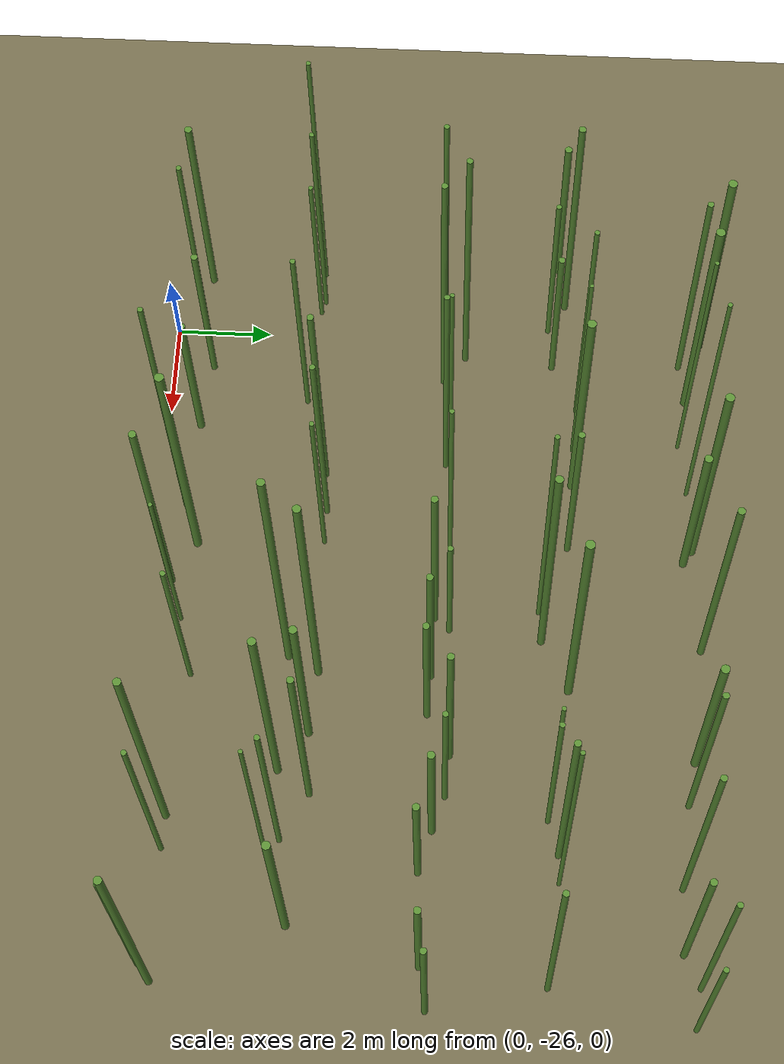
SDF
<sdf version="1.9">
 <world name="bamboo_field">
  <model name="ground_plane">
   <static>true</static>
   <link name="link">
    <collision name="collision">
     <geometry><plane><normal>0 0 1</normal><size>80.0 80.0</size></plane></geometry>
    </collision>
    <visual name="visual">
     <geometry><plane><normal>0 0 1</normal><size>80.0 80.0</size></plane></geometry>
     <material><diffuse>0.45 0.42 0.30 1</diffuse></material>
    </visual>
   </link>
  </model>
  <model name="bamboo_380">
   <static>true</static>
   <pose>-1.3619350045464018 -25.364935685529627 2.831260870548224 0 0 0</pose>
   <link name="link">
    <collision name="collision">
     <geometry>
      <cylinder><radius>0.07423483352799932</radius><length>5.662521741096448</length></cylinder>
     </geometry>
    </collision>
    <visual name="visual">
     <geometry>
      <cylinder><radius>0.07423483352799932</radius><length>5.662521741096448</length></cylinder>
     </geometry>
     <material><diffuse>0.35 0.55 0.20 1</diffuse><specular>0.1 0.1 0.1 1</specular></material>
    </visual>
   </link>
  </model>
  <model name="bamboo_381">
   <static>true</static>
   <pose>-0.09462208407889966 -25.386900372795992 3.075217236409639 0 0 0</pose>
   <link name="link">
    <collision name="collision">
     <geometry>
      <cylinder><radius>0.053742645913676695</radius><length>6.150434472819278</length></cylinder>
     </geometry>
    </collision>
    <visual name="visual">
     <geometry>
      <cylinder><radius>0.053742645913676695</radius><length>6.150434472819278</length></cylinder>
     </geometry>
     <material><diffuse>0.35 0.55 0.20 1</diffuse><specular>0.1 0.1 0.1 1</specular></material>
    </visual>
   </link>
  </model>
  <model name="bamboo_382">
   <static>true</static>
   <pose>0.8645835884386919 -25.164446224382612 2.226421990584046 0 0 0</pose>
   <link name="link">
    <collision name="collision">
     <geometry>
      <cylinder><radius>0.06748630922690256</radius><length>4.452843981168092</length></cylinder>
     </geometry>
    </collision>
    <visual name="visual">
     <geometry>
      <cylinder><radius>0.06748630922690256</radius><length>4.452843981168092</length></cylinder>
     </geometry>
     <material><diffuse>0.35 0.55 0.20 1</diffuse><specular>0.1 0.1 0.1 1</specular></material>
    </visual>
   </link>
  </model>
  <model name="bamboo_383">
   <static>true</static>
   <pose>2.317238224477471 -25.324578051582034 2.0832210445404664 0 0 0</pose>
   <link name="link">
    <collision name="collision">
     <geometry>
      <cylinder><radius>0.08113054638981307</radius><length>4.166442089080933</length></cylinder>
     </geometry>
    </collision>
    <visual name="visual">
     <geometry>
      <cylinder><radius>0.08113054638981307</radius><length>4.166442089080933</length></cylinder>
     </geometry>
     <material><diffuse>0.35 0.55 0.20 1</diffuse><specular>0.1 0.1 0.1 1</specular></material>
    </visual>
   </link>
  </model>
  <model name="bamboo_384">
   <static>true</static>
   <pose>4.256703273435419 -25.463021460111786 3.998625338557815 0 0 0</pose>
   <link name="link">
    <collision name="collision">
     <geometry>
      <cylinder><radius>0.05488544675514468</radius><length>7.99725067711563</length></cylinder>
     </geometry>
    </collision>
    <visual name="visual">
     <geometry>
      <cylinder><radius>0.05488544675514468</radius><length>7.99725067711563</length></cylinder>
     </geometry>
     <material><diffuse>0.35 0.55 0.20 1</diffuse><specular>0.1 0.1 0.1 1</specular></material>
    </visual>
   </link>
  </model>
  <model name="bamboo_385">
   <static>true</static>
   <pose>5.1344443062573815 -25.13953344209982 3.551263299761547 0 0 0</pose>
   <link name="link">
    <collision name="collision">
     <geometry>
      <cylinder><radius>0.08969788421593085</radius><length>7.102526599523094</length></cylinder>
     </geometry>
    </collision>
    <visual name="visual">
     <geometry>
      <cylinder><radius>0.08969788421593085</radius><length>7.102526599523094</length></cylinder>
     </geometry>
     <material><diffuse>0.35 0.55 0.20 1</diffuse><specular>0.1 0.1 0.1 1</specular></material>
    </visual>
   </link>
  </model>
  <model name="bamboo_386">
   <static>true</static>
   <pose>6.01993875867461 -25.609560867738665 3.2655412618542767 0 0 0</pose>
   <link name="link">
    <collision name="collision">
     <geometry>
      <cylinder><radius>0.07553769797468998</radius><length>6.5310825237085535</length></cylinder>
     </geometry>
    </collision>
    <visual name="visual">
     <geometry>
      <cylinder><radius>0.07553769797468998</radius><length>6.5310825237085535</length></cylinder>
     </geometry>
     <material><diffuse>0.35 0.55 0.20 1</diffuse><specular>0.1 0.1 0.1 1</specular></material>
    </visual>
   </link>
  </model>
  <model name="bamboo_387">
   <static>true</static>
   <pose>6.883159001919276 -25.329887361654063 2.701630957905662 0 0 0</pose>
   <link name="link">
    <collision name="collision">
     <geometry>
      <cylinder><radius>0.04296789168196705</radius><length>5.403261915811324</length></cylinder>
     </geometry>
    </collision>
    <visual name="visual">
     <geometry>
      <cylinder><radius>0.04296789168196705</radius><length>5.403261915811324</length></cylinder>
     </geometry>
     <material><diffuse>0.35 0.55 0.20 1</diffuse><specular>0.1 0.1 0.1 1</specular></material>
    </visual>
   </link>
  </model>
  <model name="bamboo_388">
   <static>true</static>
   <pose>8.116472726570391 -25.017183532304152 2.5346861325561605 0 0 0</pose>
   <link name="link">
    <collision name="collision">
     <geometry>
      <cylinder><radius>0.05446666217324718</radius><length>5.069372265112321</length></cylinder>
     </geometry>
    </collision>
    <visual name="visual">
     <geometry>
      <cylinder><radius>0.05446666217324718</radius><length>5.069372265112321</length></cylinder>
     </geometry>
     <material><diffuse>0.35 0.55 0.20 1</diffuse><specular>0.1 0.1 0.1 1</specular></material>
    </visual>
   </link>
  </model>
  <model name="bamboo_390">
   <static>true</static>
   <pose>11.152152488707216 -25.233661156297444 3.656963605397265 0 0 0</pose>
   <link name="link">
    <collision name="collision">
     <geometry>
      <cylinder><radius>0.07556974244195845</radius><length>7.31392721079453</length></cylinder>
     </geometry>
    </collision>
    <visual name="visual">
     <geometry>
      <cylinder><radius>0.07556974244195845</radius><length>7.31392721079453</length></cylinder>
     </geometry>
     <material><diffuse>0.35 0.55 0.20 1</diffuse><specular>0.1 0.1 0.1 1</specular></material>
    </visual>
   </link>
  </model>
  <model name="bamboo_391">
   <static>true</static>
   <pose>11.831298673622827 -25.2634859095422 2.8284501787300753 0 0 0</pose>
   <link name="link">
    <collision name="collision">
     <geometry>
      <cylinder><radius>0.0534358576043743</radius><length>5.656900357460151</length></cylinder>
     </geometry>
    </collision>
    <visual name="visual">
     <geometry>
      <cylinder><radius>0.0534358576043743</radius><length>5.656900357460151</length></cylinder>
     </geometry>
     <material><diffuse>0.35 0.55 0.20 1</diffuse><specular>0.1 0.1 0.1 1</specular></material>
    </visual>
   </link>
  </model>
  <model name="bamboo_392">
   <static>true</static>
   <pose>14.13837774440135 -25.477922847774757 2.738142348150844 0 0 0</pose>
   <link name="link">
    <collision name="collision">
     <geometry>
      <cylinder><radius>0.08681680570442876</radius><length>5.476284696301688</length></cylinder>
     </geometry>
    </collision>
    <visual name="visual">
     <geometry>
      <cylinder><radius>0.08681680570442876</radius><length>5.476284696301688</length></cylinder>
     </geometry>
     <material><diffuse>0.35 0.55 0.20 1</diffuse><specular>0.1 0.1 0.1 1</specular></material>
    </visual>
   </link>
  </model>
  <model name="bamboo_393">
   <static>true</static>
   <pose>14.495103602928177 -25.242124669305117 3.4618638749741057 0 0 0</pose>
   <link name="link">
    <collision name="collision">
     <geometry>
      <cylinder><radius>0.07663620132697435</radius><length>6.9237277499482115</length></cylinder>
     </geometry>
    </collision>
    <visual name="visual">
     <geometry>
      <cylinder><radius>0.07663620132697435</radius><length>6.9237277499482115</length></cylinder>
     </geometry>
     <material><diffuse>0.35 0.55 0.20 1</diffuse><specular>0.1 0.1 0.1 1</specular></material>
    </visual>
   </link>
  </model>
  <model name="bamboo_441">
   <static>true</static>
   <pose>-1.604237099194212 -22.860627068109284 3.810155940760306 0 0 0</pose>
   <link name="link">
    <collision name="collision">
     <geometry>
      <cylinder><radius>0.04643957744985022</radius><length>7.620311881520612</length></cylinder>
     </geometry>
    </collision>
    <visual name="visual">
     <geometry>
      <cylinder><radius>0.04643957744985022</radius><length>7.620311881520612</length></cylinder>
     </geometry>
     <material><diffuse>0.35 0.55 0.20 1</diffuse><specular>0.1 0.1 0.1 1</specular></material>
    </visual>
   </link>
  </model>
  <model name="bamboo_442">
   <static>true</static>
   <pose>-0.8925281145376338 -22.816212910230533 3.1477683996134456 0 0 0</pose>
   <link name="link">
    <collision name="collision">
     <geometry>
      <cylinder><radius>0.048399460436452824</radius><length>6.295536799226891</length></cylinder>
     </geometry>
    </collision>
    <visual name="visual">
     <geometry>
      <cylinder><radius>0.048399460436452824</radius><length>6.295536799226891</length></cylinder>
     </geometry>
     <material><diffuse>0.35 0.55 0.20 1</diffuse><specular>0.1 0.1 0.1 1</specular></material>
    </visual>
   </link>
  </model>
  <model name="bamboo_443">
   <static>true</static>
   <pose>-0.6249091988123027 -22.89681380398937 2.4294322119400533 0 0 0</pose>
   <link name="link">
    <collision name="collision">
     <geometry>
      <cylinder><radius>0.04864036059153946</radius><length>4.858864423880107</length></cylinder>
     </geometry>
    </collision>
    <visual name="visual">
     <geometry>
      <cylinder><radius>0.04864036059153946</radius><length>4.858864423880107</length></cylinder>
     </geometry>
     <material><diffuse>0.35 0.55 0.20 1</diffuse><specular>0.1 0.1 0.1 1</specular></material>
    </visual>
   </link>
  </model>
  <model name="bamboo_444">
   <static>true</static>
   <pose>1.6306072263284794 -23.05002664373289 2.8239844125923304 0 0 0</pose>
   <link name="link">
    <collision name="collision">
     <geometry>
      <cylinder><radius>0.05475525814998582</radius><length>5.647968825184661</length></cylinder>
     </geometry>
    </collision>
    <visual name="visual">
     <geometry>
      <cylinder><radius>0.05475525814998582</radius><length>5.647968825184661</length></cylinder>
     </geometry>
     <material><diffuse>0.35 0.55 0.20 1</diffuse><specular>0.1 0.1 0.1 1</specular></material>
    </visual>
   </link>
  </model>
  <model name="bamboo_445">
   <static>true</static>
   <pose>3.3983363362677057 -22.53631962097457 3.261508777649511 0 0 0</pose>
   <link name="link">
    <collision name="collision">
     <geometry>
      <cylinder><radius>0.06629070291263899</radius><length>6.523017555299022</length></cylinder>
     </geometry>
    </collision>
    <visual name="visual">
     <geometry>
      <cylinder><radius>0.06629070291263899</radius><length>6.523017555299022</length></cylinder>
     </geometry>
     <material><diffuse>0.35 0.55 0.20 1</diffuse><specular>0.1 0.1 0.1 1</specular></material>
    </visual>
   </link>
  </model>
  <model name="bamboo_446">
   <static>true</static>
   <pose>4.271855764440886 -22.45383808036702 3.0890356120681033 0 0 0</pose>
   <link name="link">
    <collision name="collision">
     <geometry>
      <cylinder><radius>0.057955605491878254</radius><length>6.178071224136207</length></cylinder>
     </geometry>
    </collision>
    <visual name="visual">
     <geometry>
      <cylinder><radius>0.057955605491878254</radius><length>6.178071224136207</length></cylinder>
     </geometry>
     <material><diffuse>0.35 0.55 0.20 1</diffuse><specular>0.1 0.1 0.1 1</specular></material>
    </visual>
   </link>
  </model>
  <model name="bamboo_447">
   <static>true</static>
   <pose>4.9868515585011925 -22.465676644855858 2.637755134658759 0 0 0</pose>
   <link name="link">
    <collision name="collision">
     <geometry>
      <cylinder><radius>0.04899079368489346</radius><length>5.275510269317518</length></cylinder>
     </geometry>
    </collision>
    <visual name="visual">
     <geometry>
      <cylinder><radius>0.04899079368489346</radius><length>5.275510269317518</length></cylinder>
     </geometry>
     <material><diffuse>0.35 0.55 0.20 1</diffuse><specular>0.1 0.1 0.1 1</specular></material>
    </visual>
   </link>
  </model>
  <model name="bamboo_448">
   <static>true</static>
   <pose>7.623351171967096 -23.02261795587241 3.999211493622692 0 0 0</pose>
   <link name="link">
    <collision name="collision">
     <geometry>
      <cylinder><radius>0.07834210842251364</radius><length>7.998422987245384</length></cylinder>
     </geometry>
    </collision>
    <visual name="visual">
     <geometry>
      <cylinder><radius>0.07834210842251364</radius><length>7.998422987245384</length></cylinder>
     </geometry>
     <material><diffuse>0.35 0.55 0.20 1</diffuse><specular>0.1 0.1 0.1 1</specular></material>
    </visual>
   </link>
  </model>
  <model name="bamboo_449">
   <static>true</static>
   <pose>7.943447096400853 -22.395237558031358 3.834518965140881 0 0 0</pose>
   <link name="link">
    <collision name="collision">
     <geometry>
      <cylinder><radius>0.08081425808043674</radius><length>7.669037930281762</length></cylinder>
     </geometry>
    </collision>
    <visual name="visual">
     <geometry>
      <cylinder><radius>0.08081425808043674</radius><length>7.669037930281762</length></cylinder>
     </geometry>
     <material><diffuse>0.35 0.55 0.20 1</diffuse><specular>0.1 0.1 0.1 1</specular></material>
    </visual>
   </link>
  </model>
  <model name="bamboo_450">
   <static>true</static>
   <pose>9.279531248335845 -22.501057360329483 2.7096092691303197 0 0 0</pose>
   <link name="link">
    <collision name="collision">
     <geometry>
      <cylinder><radius>0.07986953436897043</radius><length>5.4192185382606395</length></cylinder>
     </geometry>
    </collision>
    <visual name="visual">
     <geometry>
      <cylinder><radius>0.07986953436897043</radius><length>5.4192185382606395</length></cylinder>
     </geometry>
     <material><diffuse>0.35 0.55 0.20 1</diffuse><specular>0.1 0.1 0.1 1</specular></material>
    </visual>
   </link>
  </model>
  <model name="bamboo_451">
   <static>true</static>
   <pose>10.102301821643678 -23.072967393176867 3.39525312719916 0 0 0</pose>
   <link name="link">
    <collision name="collision">
     <geometry>
      <cylinder><radius>0.08031051126796943</radius><length>6.79050625439832</length></cylinder>
     </geometry>
    </collision>
    <visual name="visual">
     <geometry>
      <cylinder><radius>0.08031051126796943</radius><length>6.79050625439832</length></cylinder>
     </geometry>
     <material><diffuse>0.35 0.55 0.20 1</diffuse><specular>0.1 0.1 0.1 1</specular></material>
    </visual>
   </link>
  </model>
  <model name="bamboo_452">
   <static>true</static>
   <pose>10.57450370552795 -22.401107644702627 3.1262177817280365 0 0 0</pose>
   <link name="link">
    <collision name="collision">
     <geometry>
      <cylinder><radius>0.06818032433915969</radius><length>6.252435563456073</length></cylinder>
     </geometry>
    </collision>
    <visual name="visual">
     <geometry>
      <cylinder><radius>0.06818032433915969</radius><length>6.252435563456073</length></cylinder>
     </geometry>
     <material><diffuse>0.35 0.55 0.20 1</diffuse><specular>0.1 0.1 0.1 1</specular></material>
    </visual>
   </link>
  </model>
  <model name="bamboo_453">
   <static>true</static>
   <pose>11.558570847849007 -22.929875641327612 2.9808728402549587 0 0 0</pose>
   <link name="link">
    <collision name="collision">
     <geometry>
      <cylinder><radius>0.05545265360756098</radius><length>5.961745680509917</length></cylinder>
     </geometry>
    </collision>
    <visual name="visual">
     <geometry>
      <cylinder><radius>0.05545265360756098</radius><length>5.961745680509917</length></cylinder>
     </geometry>
     <material><diffuse>0.35 0.55 0.20 1</diffuse><specular>0.1 0.1 0.1 1</specular></material>
    </visual>
   </link>
  </model>
  <model name="bamboo_454">
   <static>true</static>
   <pose>12.423939329076504 -23.00136931005245 3.835792371841293 0 0 0</pose>
   <link name="link">
    <collision name="collision">
     <geometry>
      <cylinder><radius>0.04003417481919154</radius><length>7.671584743682586</length></cylinder>
     </geometry>
    </collision>
    <visual name="visual">
     <geometry>
      <cylinder><radius>0.04003417481919154</radius><length>7.671584743682586</length></cylinder>
     </geometry>
     <material><diffuse>0.35 0.55 0.20 1</diffuse><specular>0.1 0.1 0.1 1</specular></material>
    </visual>
   </link>
  </model>
  <model name="bamboo_455">
   <static>true</static>
   <pose>13.285028341176831 -22.682085569422032 2.647177622609674 0 0 0</pose>
   <link name="link">
    <collision name="collision">
     <geometry>
      <cylinder><radius>0.08221420432188253</radius><length>5.294355245219348</length></cylinder>
     </geometry>
    </collision>
    <visual name="visual">
     <geometry>
      <cylinder><radius>0.08221420432188253</radius><length>5.294355245219348</length></cylinder>
     </geometry>
     <material><diffuse>0.35 0.55 0.20 1</diffuse><specular>0.1 0.1 0.1 1</specular></material>
    </visual>
   </link>
  </model>
  <model name="bamboo_509">
   <static>true</static>
   <pose>-0.5847228004428807 -20.142670203981336 3.5761808736151988 0 0 0</pose>
   <link name="link">
    <collision name="collision">
     <geometry>
      <cylinder><radius>0.055354263566610426</radius><length>7.1523617472303975</length></cylinder>
     </geometry>
    </collision>
    <visual name="visual">
     <geometry>
      <cylinder><radius>0.055354263566610426</radius><length>7.1523617472303975</length></cylinder>
     </geometry>
     <material><diffuse>0.35 0.55 0.20 1</diffuse><specular>0.1 0.1 0.1 1</specular></material>
    </visual>
   </link>
  </model>
  <model name="bamboo_510">
   <static>true</static>
   <pose>0.4094778861575191 -19.664050979965275 3.7327867393850793 0 0 0</pose>
   <link name="link">
    <collision name="collision">
     <geometry><cylinder><radius>0.063526828383534</radius><length>7.465573478770159</length></cylinder></geometry>
    </collision>
    <visual name="visual">
     <geometry><cylinder><radius>0.063526828383534</radius><length>7.465573478770159</length></cylinder></geometry>
     <material><diffuse>0.35 0.55 0.20 1</diffuse><specular>0.1 0.1 0.1 1</specular></material>
    </visual>
   </link>
  </model>
  <model name="bamboo_511">
   <static>true</static>
   <pose>0.9966304011632542 -20.116212641093103 3.7349955093964597 0 0 0</pose>
   <link name="link">
    <collision name="collision">
     <geometry>
      <cylinder><radius>0.06502386872463521</radius><length>7.4699910187929195</length></cylinder>
     </geometry>
    </collision>
    <visual name="visual">
     <geometry>
      <cylinder><radius>0.06502386872463521</radius><length>7.4699910187929195</length></cylinder>
     </geometry>
     <material><diffuse>0.35 0.55 0.20 1</diffuse><specular>0.1 0.1 0.1 1</specular></material>
    </visual>
   </link>
  </model>
  <model name="bamboo_512">
   <static>true</static>
   <pose>1.7375210282828462 -19.92647915718391 2.400593181590287 0 0 0</pose>
   <link name="link">
    <collision name="collision">
     <geometry>
      <cylinder><radius>0.0468682629586562</radius><length>4.801186363180574</length></cylinder>
     </geometry>
    </collision>
    <visual name="visual">
     <geometry>
      <cylinder><radius>0.0468682629586562</radius><length>4.801186363180574</length></cylinder>
     </geometry>
     <material><diffuse>0.35 0.55 0.20 1</diffuse><specular>0.1 0.1 0.1 1</specular></material>
    </visual>
   </link>
  </model>
  <model name="bamboo_513">
   <static>true</static>
   <pose>3.0589939335624945 -19.98375507674165 3.431336912220072 0 0 0</pose>
   <link name="link">
    <collision name="collision">
     <geometry>
      <cylinder><radius>0.055819172882435444</radius><length>6.862673824440144</length></cylinder>
     </geometry>
    </collision>
    <visual name="visual">
     <geometry>
      <cylinder><radius>0.055819172882435444</radius><length>6.862673824440144</length></cylinder>
     </geometry>
     <material><diffuse>0.35 0.55 0.20 1</diffuse><specular>0.1 0.1 0.1 1</specular></material>
    </visual>
   </link>
  </model>
  <model name="bamboo_514">
   <static>true</static>
   <pose>5.572062914246581 -19.79056325179148 3.528967472291516 0 0 0</pose>
   <link name="link">
    <collision name="collision">
     <geometry>
      <cylinder><radius>0.04843028782914538</radius><length>7.057934944583032</length></cylinder>
     </geometry>
    </collision>
    <visual name="visual">
     <geometry>
      <cylinder><radius>0.04843028782914538</radius><length>7.057934944583032</length></cylinder>
     </geometry>
     <material><diffuse>0.35 0.55 0.20 1</diffuse><specular>0.1 0.1 0.1 1</specular></material>
    </visual>
   </link>
  </model>
  <model name="bamboo_515">
   <static>true</static>
   <pose>6.640304976400212 -20.056740174727906 2.806786960795901 0 0 0</pose>
   <link name="link">
    <collision name="collision">
     <geometry>
      <cylinder><radius>0.07167437703512972</radius><length>5.613573921591802</length></cylinder>
     </geometry>
    </collision>
    <visual name="visual">
     <geometry>
      <cylinder><radius>0.07167437703512972</radius><length>5.613573921591802</length></cylinder>
     </geometry>
     <material><diffuse>0.35 0.55 0.20 1</diffuse><specular>0.1 0.1 0.1 1</specular></material>
    </visual>
   </link>
  </model>
  <model name="bamboo_516">
   <static>true</static>
   <pose>6.905214809392811 -19.74180160216873 2.0281542374492645 0 0 0</pose>
   <link name="link">
    <collision name="collision">
     <geometry>
      <cylinder><radius>0.05865507027136855</radius><length>4.056308474898529</length></cylinder>
     </geometry>
    </collision>
    <visual name="visual">
     <geometry>
      <cylinder><radius>0.05865507027136855</radius><length>4.056308474898529</length></cylinder>
     </geometry>
     <material><diffuse>0.35 0.55 0.20 1</diffuse><specular>0.1 0.1 0.1 1</specular></material>
    </visual>
   </link>
  </model>
  <model name="bamboo_517">
   <static>true</static>
   <pose>7.941363622694603 -20.084016826921005 2.497646245751764 0 0 0</pose>
   <link name="link">
    <collision name="collision">
     <geometry>
      <cylinder><radius>0.07133434643358114</radius><length>4.995292491503528</length></cylinder>
     </geometry>
    </collision>
    <visual name="visual">
     <geometry>
      <cylinder><radius>0.07133434643358114</radius><length>4.995292491503528</length></cylinder>
     </geometry>
     <material><diffuse>0.35 0.55 0.20 1</diffuse><specular>0.1 0.1 0.1 1</specular></material>
    </visual>
   </link>
  </model>
  <model name="bamboo_518">
   <static>true</static>
   <pose>8.784159300618734 -20.11632009131943 2.3340403745366185 0 0 0</pose>
   <link name="link">
    <collision name="collision">
     <geometry>
      <cylinder><radius>0.0694335344084036</radius><length>4.668080749073237</length></cylinder>
     </geometry>
    </collision>
    <visual name="visual">
     <geometry>
      <cylinder><radius>0.0694335344084036</radius><length>4.668080749073237</length></cylinder>
     </geometry>
     <material><diffuse>0.35 0.55 0.20 1</diffuse><specular>0.1 0.1 0.1 1</specular></material>
    </visual>
   </link>
  </model>
  <model name="bamboo_519">
   <static>true</static>
   <pose>9.645381567256372 -19.62823098188578 2.675670302415866 0 0 0</pose>
   <link name="link">
    <collision name="collision">
     <geometry>
      <cylinder><radius>0.06981849593077512</radius><length>5.351340604831732</length></cylinder>
     </geometry>
    </collision>
    <visual name="visual">
     <geometry>
      <cylinder><radius>0.06981849593077512</radius><length>5.351340604831732</length></cylinder>
     </geometry>
     <material><diffuse>0.35 0.55 0.20 1</diffuse><specular>0.1 0.1 0.1 1</specular></material>
    </visual>
   </link>
  </model>
  <model name="bamboo_520">
   <static>true</static>
   <pose>10.524551919868324 -19.682317882576324 2.376852067781739 0 0 0</pose>
   <link name="link">
    <collision name="collision">
     <geometry>
      <cylinder><radius>0.057962544318331616</radius><length>4.753704135563478</length></cylinder>
     </geometry>
    </collision>
    <visual name="visual">
     <geometry>
      <cylinder><radius>0.057962544318331616</radius><length>4.753704135563478</length></cylinder>
     </geometry>
     <material><diffuse>0.35 0.55 0.20 1</diffuse><specular>0.1 0.1 0.1 1</specular></material>
    </visual>
   </link>
  </model>
  <model name="bamboo_521">
   <static>true</static>
   <pose>11.236103163591979 -19.91227668440586 2.262411552834365 0 0 0</pose>
   <link name="link">
    <collision name="collision">
     <geometry>
      <cylinder><radius>0.07635844140681607</radius><length>4.52482310566873</length></cylinder>
     </geometry>
    </collision>
    <visual name="visual">
     <geometry>
      <cylinder><radius>0.07635844140681607</radius><length>4.52482310566873</length></cylinder>
     </geometry>
     <material><diffuse>0.35 0.55 0.20 1</diffuse><specular>0.1 0.1 0.1 1</specular></material>
    </visual>
   </link>
  </model>
  <model name="bamboo_522">
   <static>true</static>
   <pose>12.103424323149607 -20.146009247017624 2.0747268553851903 0 0 0</pose>
   <link name="link">
    <collision name="collision">
     <geometry>
      <cylinder><radius>0.07252701900606123</radius><length>4.149453710770381</length></cylinder>
     </geometry>
    </collision>
    <visual name="visual">
     <geometry>
      <cylinder><radius>0.07252701900606123</radius><length>4.149453710770381</length></cylinder>
     </geometry>
     <material><diffuse>0.35 0.55 0.20 1</diffuse><specular>0.1 0.1 0.1 1</specular></material>
    </visual>
   </link>
  </model>
  <model name="bamboo_523">
   <static>true</static>
   <pose>13.984433717834534 -20.033318773139648 2.0394835330282906 0 0 0</pose>
   <link name="link">
    <collision name="collision">
     <geometry>
      <cylinder><radius>0.07267838092003763</radius><length>4.078967066056581</length></cylinder>
     </geometry>
    </collision>
    <visual name="visual">
     <geometry>
      <cylinder><radius>0.07267838092003763</radius><length>4.078967066056581</length></cylinder>
     </geometry>
     <material><diffuse>0.35 0.55 0.20 1</diffuse><specular>0.1 0.1 0.1 1</specular></material>
    </visual>
   </link>
  </model>
  <model name="bamboo_524">
   <static>true</static>
   <pose>14.840344819596018 -19.88384373065127 2.3062541962488727 0 0 0</pose>
   <link name="link">
    <collision name="collision">
     <geometry>
      <cylinder><radius>0.06371981691638685</radius><length>4.6125083924977455</length></cylinder>
     </geometry>
    </collision>
    <visual name="visual">
     <geometry>
      <cylinder><radius>0.06371981691638685</radius><length>4.6125083924977455</length></cylinder>
     </geometry>
     <material><diffuse>0.35 0.55 0.20 1</diffuse><specular>0.1 0.1 0.1 1</specular></material>
    </visual>
   </link>
  </model>
  <model name="bamboo_568">
   <static>true</static>
   <pose>-1.9595485418057836 -17.683190604749257 2.3096113955965727 0 0 0</pose>
   <link name="link">
    <collision name="collision">
     <geometry>
      <cylinder><radius>0.0754844648158157</radius><length>4.619222791193145</length></cylinder>
     </geometry>
    </collision>
    <visual name="visual">
     <geometry>
      <cylinder><radius>0.0754844648158157</radius><length>4.619222791193145</length></cylinder>
     </geometry>
     <material><diffuse>0.35 0.55 0.20 1</diffuse><specular>0.1 0.1 0.1 1</specular></material>
    </visual>
   </link>
  </model>
  <model name="bamboo_569">
   <static>true</static>
   <pose>-1.0034130750188601 -17.508157732286268 3.323780421929878 0 0 0</pose>
   <link name="link">
    <collision name="collision">
     <geometry>
      <cylinder><radius>0.0707804338049665</radius><length>6.647560843859756</length></cylinder>
     </geometry>
    </collision>
    <visual name="visual">
     <geometry>
      <cylinder><radius>0.0707804338049665</radius><length>6.647560843859756</length></cylinder>
     </geometry>
     <material><diffuse>0.35 0.55 0.20 1</diffuse><specular>0.1 0.1 0.1 1</specular></material>
    </visual>
   </link>
  </model>
  <model name="bamboo_570">
   <static>true</static>
   <pose>-0.3748561302861867 -17.86130809730162 2.439924030855115 0 0 0</pose>
   <link name="link">
    <collision name="collision">
     <geometry>
      <cylinder><radius>0.05589295026860947</radius><length>4.87984806171023</length></cylinder>
     </geometry>
    </collision>
    <visual name="visual">
     <geometry>
      <cylinder><radius>0.05589295026860947</radius><length>4.87984806171023</length></cylinder>
     </geometry>
     <material><diffuse>0.35 0.55 0.20 1</diffuse><specular>0.1 0.1 0.1 1</specular></material>
    </visual>
   </link>
  </model>
  <model name="bamboo_571">
   <static>true</static>
   <pose>0.5533302983926054 -17.759683958544382 2.183891107878133 0 0 0</pose>
   <link name="link">
    <collision name="collision">
     <geometry>
      <cylinder><radius>0.06685179762669544</radius><length>4.367782215756266</length></cylinder>
     </geometry>
    </collision>
    <visual name="visual">
     <geometry>
      <cylinder><radius>0.06685179762669544</radius><length>4.367782215756266</length></cylinder>
     </geometry>
     <material><diffuse>0.35 0.55 0.20 1</diffuse><specular>0.1 0.1 0.1 1</specular></material>
    </visual>
   </link>
  </model>
  <model name="bamboo_572">
   <static>true</static>
   <pose>1.6025942745079582 -17.211389867851683 3.505311379109034 0 0 0</pose>
   <link name="link">
    <collision name="collision">
     <geometry>
      <cylinder><radius>0.050922264289225735</radius><length>7.010622758218068</length></cylinder>
     </geometry>
    </collision>
    <visual name="visual">
     <geometry>
      <cylinder><radius>0.050922264289225735</radius><length>7.010622758218068</length></cylinder>
     </geometry>
     <material><diffuse>0.35 0.55 0.20 1</diffuse><specular>0.1 0.1 0.1 1</specular></material>
    </visual>
   </link>
  </model>
  <model name="bamboo_573">
   <static>true</static>
   <pose>2.572687480352547 -17.275884104733336 3.337876935988773 0 0 0</pose>
   <link name="link">
    <collision name="collision">
     <geometry>
      <cylinder><radius>0.040440184814751874</radius><length>6.675753871977546</length></cylinder>
     </geometry>
    </collision>
    <visual name="visual">
     <geometry>
      <cylinder><radius>0.040440184814751874</radius><length>6.675753871977546</length></cylinder>
     </geometry>
     <material><diffuse>0.35 0.55 0.20 1</diffuse><specular>0.1 0.1 0.1 1</specular></material>
    </visual>
   </link>
  </model>
  <model name="bamboo_574">
   <static>true</static>
   <pose>3.4308567541325368 -17.26787892446565 3.365102721537056 0 0 0</pose>
   <link name="link">
    <collision name="collision">
     <geometry>
      <cylinder><radius>0.08794484080369668</radius><length>6.730205443074112</length></cylinder>
     </geometry>
    </collision>
    <visual name="visual">
     <geometry>
      <cylinder><radius>0.08794484080369668</radius><length>6.730205443074112</length></cylinder>
     </geometry>
     <material><diffuse>0.35 0.55 0.20 1</diffuse><specular>0.1 0.1 0.1 1</specular></material>
    </visual>
   </link>
  </model>
  <model name="bamboo_575">
   <static>true</static>
   <pose>4.9221310635903475 -17.333555280706744 2.5656579885587947 0 0 0</pose>
   <link name="link">
    <collision name="collision">
     <geometry>
      <cylinder><radius>0.06701186564712808</radius><length>5.131315977117589</length></cylinder>
     </geometry>
    </collision>
    <visual name="visual">
     <geometry>
      <cylinder><radius>0.06701186564712808</radius><length>5.131315977117589</length></cylinder>
     </geometry>
     <material><diffuse>0.35 0.55 0.20 1</diffuse><specular>0.1 0.1 0.1 1</specular></material>
    </visual>
   </link>
  </model>
  <model name="bamboo_576">
   <static>true</static>
   <pose>5.762976258049203 -17.774272954121145 2.0877033218210035 0 0 0</pose>
   <link name="link">
    <collision name="collision">
     <geometry>
      <cylinder><radius>0.0622778448785859</radius><length>4.175406643642007</length></cylinder>
     </geometry>
    </collision>
    <visual name="visual">
     <geometry>
      <cylinder><radius>0.0622778448785859</radius><length>4.175406643642007</length></cylinder>
     </geometry>
     <material><diffuse>0.35 0.55 0.20 1</diffuse><specular>0.1 0.1 0.1 1</specular></material>
    </visual>
   </link>
  </model>
  <model name="bamboo_577">
   <static>true</static>
   <pose>6.416319393541055 -17.903900215322928 3.9125524129467983 0 0 0</pose>
   <link name="link">
    <collision name="collision">
     <geometry>
      <cylinder><radius>0.04836974046067474</radius><length>7.825104825893597</length></cylinder>
     </geometry>
    </collision>
    <visual name="visual">
     <geometry>
      <cylinder><radius>0.04836974046067474</radius><length>7.825104825893597</length></cylinder>
     </geometry>
     <material><diffuse>0.35 0.55 0.20 1</diffuse><specular>0.1 0.1 0.1 1</specular></material>
    </visual>
   </link>
  </model>
  <model name="bamboo_578">
   <static>true</static>
   <pose>7.062872357066366 -17.83628285925315 3.7299017114252626 0 0 0</pose>
   <link name="link">
    <collision name="collision">
     <geometry>
      <cylinder><radius>0.07867911331846383</radius><length>7.459803422850525</length></cylinder>
     </geometry>
    </collision>
    <visual name="visual">
     <geometry>
      <cylinder><radius>0.07867911331846383</radius><length>7.459803422850525</length></cylinder>
     </geometry>
     <material><diffuse>0.35 0.55 0.20 1</diffuse><specular>0.1 0.1 0.1 1</specular></material>
    </visual>
   </link>
  </model>
  <model name="bamboo_579">
   <static>true</static>
   <pose>8.133620237840073 -17.251205847618902 3.5504134809261227 0 0 0</pose>
   <link name="link">
    <collision name="collision">
     <geometry>
      <cylinder><radius>0.08881119606695138</radius><length>7.1008269618522455</length></cylinder>
     </geometry>
    </collision>
    <visual name="visual">
     <geometry>
      <cylinder><radius>0.08881119606695138</radius><length>7.1008269618522455</length></cylinder>
     </geometry>
     <material><diffuse>0.35 0.55 0.20 1</diffuse><specular>0.1 0.1 0.1 1</specular></material>
    </visual>
   </link>
  </model>
  <model name="bamboo_580">
   <static>true</static>
   <pose>10.119424201574077 -17.518372681952254 2.1085361417828823 0 0 0</pose>
   <link name="link">
    <collision name="collision">
     <geometry>
      <cylinder><radius>0.04437604489670993</radius><length>4.217072283565765</length></cylinder>
     </geometry>
    </collision>
    <visual name="visual">
     <geometry>
      <cylinder><radius>0.04437604489670993</radius><length>4.217072283565765</length></cylinder>
     </geometry>
     <material><diffuse>0.35 0.55 0.20 1</diffuse><specular>0.1 0.1 0.1 1</specular></material>
    </visual>
   </link>
  </model>
  <model name="bamboo_581">
   <static>true</static>
   <pose>10.934610853634123 -17.60591410142723 2.7760652072895415 0 0 0</pose>
   <link name="link">
    <collision name="collision">
     <geometry>
      <cylinder><radius>0.052932397949558785</radius><length>5.552130414579083</length></cylinder>
     </geometry>
    </collision>
    <visual name="visual">
     <geometry>
      <cylinder><radius>0.052932397949558785</radius><length>5.552130414579083</length></cylinder>
     </geometry>
     <material><diffuse>0.35 0.55 0.20 1</diffuse><specular>0.1 0.1 0.1 1</specular></material>
    </visual>
   </link>
  </model>
  <model name="bamboo_582">
   <static>true</static>
   <pose>11.633059706955148 -17.379859207988098 3.282845492963279 0 0 0</pose>
   <link name="link">
    <collision name="collision">
     <geometry>
      <cylinder><radius>0.06674171850305011</radius><length>6.565690985926558</length></cylinder>
     </geometry>
    </collision>
    <visual name="visual">
     <geometry>
      <cylinder><radius>0.06674171850305011</radius><length>6.565690985926558</length></cylinder>
     </geometry>
     <material><diffuse>0.35 0.55 0.20 1</diffuse><specular>0.1 0.1 0.1 1</specular></material>
    </visual>
   </link>
  </model>
  <model name="bamboo_583">
   <static>true</static>
   <pose>12.208753240352063 -17.358207297310923 3.8560955003326676 0 0 0</pose>
   <link name="link">
    <collision name="collision">
     <geometry>
      <cylinder><radius>0.043629472239948855</radius><length>7.712191000665335</length></cylinder>
     </geometry>
    </collision>
    <visual name="visual">
     <geometry>
      <cylinder><radius>0.043629472239948855</radius><length>7.712191000665335</length></cylinder>
     </geometry>
     <material><diffuse>0.35 0.55 0.20 1</diffuse><specular>0.1 0.1 0.1 1</specular></material>
    </visual>
   </link>
  </model>
  <model name="bamboo_584">
   <static>true</static>
   <pose>14.292899715546781 -17.535604191007476 3.321446329814481 0 0 0</pose>
   <link name="link">
    <collision name="collision">
     <geometry>
      <cylinder><radius>0.05975566291143088</radius><length>6.642892659628962</length></cylinder>
     </geometry>
    </collision>
    <visual name="visual">
     <geometry>
      <cylinder><radius>0.05975566291143088</radius><length>6.642892659628962</length></cylinder>
     </geometry>
     <material><diffuse>0.35 0.55 0.20 1</diffuse><specular>0.1 0.1 0.1 1</specular></material>
    </visual>
   </link>
  </model>
  <model name="bamboo_639">
   <static>true</static>
   <pose>-0.1390319605087712 -14.538321847007204 3.1263372076098603 0 0 0</pose>
   <link name="link">
    <collision name="collision">
     <geometry>
      <cylinder><radius>0.0883027727816553</radius><length>6.252674415219721</length></cylinder>
     </geometry>
    </collision>
    <visual name="visual">
     <geometry>
      <cylinder><radius>0.0883027727816553</radius><length>6.252674415219721</length></cylinder>
     </geometry>
     <material><diffuse>0.35 0.55 0.20 1</diffuse><specular>0.1 0.1 0.1 1</specular></material>
    </visual>
   </link>
  </model>
  <model name="bamboo_640">
   <static>true</static>
   <pose>0.4256319829706429 -14.987165335531227 3.173653034299959 0 0 0</pose>
   <link name="link">
    <collision name="collision">
     <geometry>
      <cylinder><radius>0.0630360220732256</radius><length>6.347306068599918</length></cylinder>
     </geometry>
    </collision>
    <visual name="visual">
     <geometry>
      <cylinder><radius>0.0630360220732256</radius><length>6.347306068599918</length></cylinder>
     </geometry>
     <material><diffuse>0.35 0.55 0.20 1</diffuse><specular>0.1 0.1 0.1 1</specular></material>
    </visual>
   </link>
  </model>
  <model name="bamboo_641">
   <static>true</static>
   <pose>1.2944592959751005 -14.847541660719623 3.3538259521302 0 0 0</pose>
   <link name="link">
    <collision name="collision">
     <geometry><cylinder><radius>0.08970990166827378</radius><length>6.7076519042604</length></cylinder></geometry>
    </collision>
    <visual name="visual">
     <geometry><cylinder><radius>0.08970990166827378</radius><length>6.7076519042604</length></cylinder></geometry>
     <material><diffuse>0.35 0.55 0.20 1</diffuse><specular>0.1 0.1 0.1 1</specular></material>
    </visual>
   </link>
  </model>
  <model name="bamboo_642">
   <static>true</static>
   <pose>2.389466800365491 -15.00344654542641 3.6643540898464573 0 0 0</pose>
   <link name="link">
    <collision name="collision">
     <geometry>
      <cylinder><radius>0.04048615958572125</radius><length>7.3287081796929145</length></cylinder>
     </geometry>
    </collision>
    <visual name="visual">
     <geometry>
      <cylinder><radius>0.04048615958572125</radius><length>7.3287081796929145</length></cylinder>
     </geometry>
     <material><diffuse>0.35 0.55 0.20 1</diffuse><specular>0.1 0.1 0.1 1</specular></material>
    </visual>
   </link>
  </model>
  <model name="bamboo_643">
   <static>true</static>
   <pose>3.518754458387265 -14.821076598188554 3.8627924796713256 0 0 0</pose>
   <link name="link">
    <collision name="collision">
     <geometry>
      <cylinder><radius>0.04380144102668446</radius><length>7.725584959342651</length></cylinder>
     </geometry>
    </collision>
    <visual name="visual">
     <geometry>
      <cylinder><radius>0.04380144102668446</radius><length>7.725584959342651</length></cylinder>
     </geometry>
     <material><diffuse>0.35 0.55 0.20 1</diffuse><specular>0.1 0.1 0.1 1</specular></material>
    </visual>
   </link>
  </model>
  <model name="bamboo_644">
   <static>true</static>
   <pose>4.879841362964367 -14.719253608285296 3.366214617047537 0 0 0</pose>
   <link name="link">
    <collision name="collision">
     <geometry>
      <cylinder><radius>0.0873559054531739</radius><length>6.732429234095074</length></cylinder>
     </geometry>
    </collision>
    <visual name="visual">
     <geometry>
      <cylinder><radius>0.0873559054531739</radius><length>6.732429234095074</length></cylinder>
     </geometry>
     <material><diffuse>0.35 0.55 0.20 1</diffuse><specular>0.1 0.1 0.1 1</specular></material>
    </visual>
   </link>
  </model>
  <model name="bamboo_645">
   <static>true</static>
   <pose>5.16469534846236 -14.893766342777003 2.4135572646440195 0 0 0</pose>
   <link name="link">
    <collision name="collision">
     <geometry>
      <cylinder><radius>0.08363712492041489</radius><length>4.827114529288039</length></cylinder>
     </geometry>
    </collision>
    <visual name="visual">
     <geometry>
      <cylinder><radius>0.08363712492041489</radius><length>4.827114529288039</length></cylinder>
     </geometry>
     <material><diffuse>0.35 0.55 0.20 1</diffuse><specular>0.1 0.1 0.1 1</specular></material>
    </visual>
   </link>
  </model>
  <model name="bamboo_646">
   <static>true</static>
   <pose>7.142552115718475 -14.533582197695004 3.3268481566409003 0 0 0</pose>
   <link name="link">
    <collision name="collision">
     <geometry>
      <cylinder><radius>0.07379060624382633</radius><length>6.653696313281801</length></cylinder>
     </geometry>
    </collision>
    <visual name="visual">
     <geometry>
      <cylinder><radius>0.07379060624382633</radius><length>6.653696313281801</length></cylinder>
     </geometry>
     <material><diffuse>0.35 0.55 0.20 1</diffuse><specular>0.1 0.1 0.1 1</specular></material>
    </visual>
   </link>
  </model>
  <model name="bamboo_648">
   <static>true</static>
   <pose>9.574166736145566 -14.664887516096687 2.560533246366374 0 0 0</pose>
   <link name="link">
    <collision name="collision">
     <geometry>
      <cylinder><radius>0.08580034148362786</radius><length>5.121066492732748</length></cylinder>
     </geometry>
    </collision>
    <visual name="visual">
     <geometry>
      <cylinder><radius>0.08580034148362786</radius><length>5.121066492732748</length></cylinder>
     </geometry>
     <material><diffuse>0.35 0.55 0.20 1</diffuse><specular>0.1 0.1 0.1 1</specular></material>
    </visual>
   </link>
  </model>
  <model name="bamboo_649">
   <static>true</static>
   <pose>10.492093704990381 -14.792951300543194 3.081535891183654 0 0 0</pose>
   <link name="link">
    <collision name="collision">
     <geometry>
      <cylinder><radius>0.06391600383060217</radius><length>6.163071782367308</length></cylinder>
     </geometry>
    </collision>
    <visual name="visual">
     <geometry>
      <cylinder><radius>0.06391600383060217</radius><length>6.163071782367308</length></cylinder>
     </geometry>
     <material><diffuse>0.35 0.55 0.20 1</diffuse><specular>0.1 0.1 0.1 1</specular></material>
    </visual>
   </link>
  </model>
  <model name="bamboo_650">
   <static>true</static>
   <pose>12.213773378239498 -14.92102647654886 3.378421098119298 0 0 0</pose>
   <link name="link">
    <collision name="collision">
     <geometry>
      <cylinder><radius>0.06300352950232149</radius><length>6.756842196238596</length></cylinder>
     </geometry>
    </collision>
    <visual name="visual">
     <geometry>
      <cylinder><radius>0.06300352950232149</radius><length>6.756842196238596</length></cylinder>
     </geometry>
     <material><diffuse>0.35 0.55 0.20 1</diffuse><specular>0.1 0.1 0.1 1</specular></material>
    </visual>
   </link>
  </model>
  <model name="bamboo_651">
   <static>true</static>
   <pose>13.521897061069394 -14.902555739784592 2.5194015381805963 0 0 0</pose>
   <link name="link">
    <collision name="collision">
     <geometry>
      <cylinder><radius>0.07063890481808857</radius><length>5.038803076361193</length></cylinder>
     </geometry>
    </collision>
    <visual name="visual">
     <geometry>
      <cylinder><radius>0.07063890481808857</radius><length>5.038803076361193</length></cylinder>
     </geometry>
     <material><diffuse>0.35 0.55 0.20 1</diffuse><specular>0.1 0.1 0.1 1</specular></material>
    </visual>
   </link>
  </model>
  <model name="bamboo_652">
   <static>true</static>
   <pose>14.173813564176804 -14.578054307768463 2.9975400332203934 0 0 0</pose>
   <link name="link">
    <collision name="collision">
     <geometry>
      <cylinder><radius>0.05829620755609634</radius><length>5.995080066440787</length></cylinder>
     </geometry>
    </collision>
    <visual name="visual">
     <geometry>
      <cylinder><radius>0.05829620755609634</radius><length>5.995080066440787</length></cylinder>
     </geometry>
     <material><diffuse>0.35 0.55 0.20 1</diffuse><specular>0.1 0.1 0.1 1</specular></material>
    </visual>
   </link>
  </model>
  <model name="bamboo_653">
   <static>true</static>
   <pose>14.967162094395977 -14.6654282360943 2.3597784574539915 0 0 0</pose>
   <link name="link">
    <collision name="collision">
     <geometry>
      <cylinder><radius>0.053981476594034204</radius><length>4.719556914907983</length></cylinder>
     </geometry>
    </collision>
    <visual name="visual">
     <geometry>
      <cylinder><radius>0.053981476594034204</radius><length>4.719556914907983</length></cylinder>
     </geometry>
     <material><diffuse>0.35 0.55 0.20 1</diffuse><specular>0.1 0.1 0.1 1</specular></material>
    </visual>
   </link>
  </model>
 </world>
</sdf>
